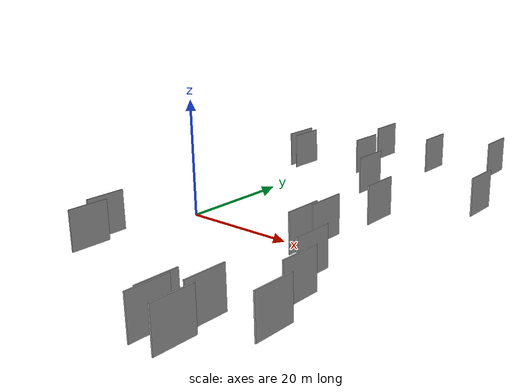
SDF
<sdf version="1.6">
 <world name="default">
  <scene>
   <sky><clouds><speed>12</speed></clouds></sky>
   <ambient>0.4 0.4 0.4 1</ambient>
   <background>0.7 0.7 0.7 1</background>
   <shadows>1</shadows>
  </scene>
  <gravity>0 0 -9.8066</gravity>
  <magnetic_field>6e-06 2.3e-05 -4.2e-05</magnetic_field>
  <physics default="0" name="default_physics" type="ode">
   <ode>
    <solver>
     <type>quick</type>
     <iters>10</iters>
     <sor>1.0</sor>
     <use_dynamic_moi_rescaling>0</use_dynamic_moi_rescaling>
    </solver>
    <constraints>
     <cfm>0</cfm>
     <erp>0.2</erp>
     <contact_max_correcting_vel>100</contact_max_correcting_vel>
     <contact_surface_layer>0.001</contact_surface_layer>
    </constraints>
   </ode>
   <max_step_size>0.004</max_step_size>
   <real_time_factor>1</real_time_factor>
   <real_time_update_rate>250</real_time_update_rate>
  </physics>
  <light name="sun" type="directional">
   <pose>0 0 10 0 0 0</pose>
   <diffuse>0.8 0.8 0.8 1</diffuse>
   <specular>0.2 0.2 0.2 1</specular>
   <attenuation>
    <range>1000</range>
    <constant>0.9</constant>
    <linear>0.01</linear>
    <quadratic>0.001</quadratic>
   </attenuation>
   <direction>-0.5 0.1 -0.9</direction>
  </light>
  <model name="grey_wall_1">
   <static>1</static>
   <pose>33.4672 6.1095 5.0 0.000000 0.000000 1.570796</pose>
   <link name="link">
    <pose>0 0 3.00 0 0 0</pose>
    <collision name="collision"><geometry><box><size>6.00 0.2 6.00</size></box></geometry></collision>
    <visual name="visual">
     <cast_shadows>0</cast_shadows>
     <geometry><box><size>6.00 0.2 6.00</size></box></geometry>
     <material>
      <script>
       <uri>model://grey_wall/materials/scripts</uri>
       <uri>model://grey_wall/materials/textures</uri>
       <name>vrc/grey_wall</name>
      </script>
     </material>
    </visual>
   </link>
  </model>
  <model name="grey_wall_2">
   <static>1</static>
   <pose>8.4890 -26.8085 5.0 0.000000 0.000000 1.570796</pose>
   <link name="link">
    <pose>0 0 3.00 0 0 0</pose>
    <collision name="collision"><geometry><box><size>6.00 0.2 6.00</size></box></geometry></collision>
    <visual name="visual">
     <cast_shadows>0</cast_shadows>
     <geometry><box><size>6.00 0.2 6.00</size></box></geometry>
     <material>
      <script>
       <uri>model://grey_wall/materials/scripts</uri>
       <uri>model://grey_wall/materials/textures</uri>
       <name>vrc/grey_wall</name>
      </script>
     </material>
    </visual>
   </link>
  </model>
  <model name="grey_wall_3">
   <static>1</static>
   <pose>34.0434 -37.7757 5.0 0.000000 0.000000 1.570796</pose>
   <link name="link">
    <pose>0 0 3.00 0 0 0</pose>
    <collision name="collision"><geometry><box><size>6.00 0.2 6.00</size></box></geometry></collision>
    <visual name="visual">
     <cast_shadows>0</cast_shadows>
     <geometry><box><size>6.00 0.2 6.00</size></box></geometry>
     <material>
      <script>
       <uri>model://grey_wall/materials/scripts</uri>
       <uri>model://grey_wall/materials/textures</uri>
       <name>vrc/grey_wall</name>
      </script>
     </material>
    </visual>
   </link>
  </model>
  <model name="grey_wall_4">
   <static>1</static>
   <pose>14.4410 36.9254 5.0 0.000000 0.000000 1.570796</pose>
   <link name="link">
    <pose>0 0 3.00 0 0 0</pose>
    <collision name="collision"><geometry><box><size>6.00 0.2 6.00</size></box></geometry></collision>
    <visual name="visual">
     <cast_shadows>0</cast_shadows>
     <geometry><box><size>6.00 0.2 6.00</size></box></geometry>
     <material>
      <script>
       <uri>model://grey_wall/materials/scripts</uri>
       <uri>model://grey_wall/materials/textures</uri>
       <name>vrc/grey_wall</name>
      </script>
     </material>
    </visual>
   </link>
  </model>
  <model name="grey_wall_5">
   <static>1</static>
   <pose>4.0566 23.6600 5.0 0.000000 0.000000 1.570796</pose>
   <link name="link">
    <pose>0 0 3.00 0 0 0</pose>
    <collision name="collision"><geometry><box><size>6.00 0.2 6.00</size></box></geometry></collision>
    <visual name="visual">
     <cast_shadows>0</cast_shadows>
     <geometry><box><size>6.00 0.2 6.00</size></box></geometry>
     <material>
      <script>
       <uri>model://grey_wall/materials/scripts</uri>
       <uri>model://grey_wall/materials/textures</uri>
       <name>vrc/grey_wall</name>
      </script>
     </material>
    </visual>
   </link>
  </model>
  <model name="grey_wall_6">
   <static>1</static>
   <pose>36.7212 -32.2249 5.0 0.000000 0.000000 1.570796</pose>
   <link name="link">
    <pose>0 0 3.00 0 0 0</pose>
    <collision name="collision"><geometry><box><size>6.00 0.2 6.00</size></box></geometry></collision>
    <visual name="visual">
     <cast_shadows>0</cast_shadows>
     <geometry><box><size>6.00 0.2 6.00</size></box></geometry>
     <material>
      <script>
       <uri>model://grey_wall/materials/scripts</uri>
       <uri>model://grey_wall/materials/textures</uri>
       <name>vrc/grey_wall</name>
      </script>
     </material>
    </visual>
   </link>
  </model>
  <model name="grey_wall_7">
   <static>1</static>
   <pose>33.7180 -36.2812 5.0 0.000000 0.000000 1.570796</pose>
   <link name="link">
    <pose>0 0 3.00 0 0 0</pose>
    <collision name="collision"><geometry><box><size>6.00 0.2 6.00</size></box></geometry></collision>
    <visual name="visual">
     <cast_shadows>0</cast_shadows>
     <geometry><box><size>6.00 0.2 6.00</size></box></geometry>
     <material>
      <script>
       <uri>model://grey_wall/materials/scripts</uri>
       <uri>model://grey_wall/materials/textures</uri>
       <name>vrc/grey_wall</name>
      </script>
     </material>
    </visual>
   </link>
  </model>
  <model name="grey_wall_8">
   <static>1</static>
   <pose>5.6744 23.1368 5.0 0.000000 0.000000 1.570796</pose>
   <link name="link">
    <pose>0 0 3.00 0 0 0</pose>
    <collision name="collision"><geometry><box><size>6.00 0.2 6.00</size></box></geometry></collision>
    <visual name="visual">
     <cast_shadows>0</cast_shadows>
     <geometry><box><size>6.00 0.2 6.00</size></box></geometry>
     <material>
      <script>
       <uri>model://grey_wall/materials/scripts</uri>
       <uri>model://grey_wall/materials/textures</uri>
       <name>vrc/grey_wall</name>
      </script>
     </material>
    </visual>
   </link>
  </model>
  <model name="grey_wall_9">
   <static>1</static>
   <pose>36.3481 38.9907 5.0 0.000000 0.000000 1.570796</pose>
   <link name="link">
    <pose>0 0 3.00 0 0 0</pose>
    <collision name="collision"><geometry><box><size>6.00 0.2 6.00</size></box></geometry></collision>
    <visual name="visual">
     <cast_shadows>0</cast_shadows>
     <geometry><box><size>6.00 0.2 6.00</size></box></geometry>
     <material>
      <script>
       <uri>model://grey_wall/materials/scripts</uri>
       <uri>model://grey_wall/materials/textures</uri>
       <name>vrc/grey_wall</name>
      </script>
     </material>
    </visual>
   </link>
  </model>
  <model name="grey_wall_10">
   <static>1</static>
   <pose>43.6414 18.6308 5.0 0.000000 0.000000 1.570796</pose>
   <link name="link">
    <pose>0 0 3.00 0 0 0</pose>
    <collision name="collision"><geometry><box><size>6.00 0.2 6.00</size></box></geometry></collision>
    <visual name="visual">
     <cast_shadows>0</cast_shadows>
     <geometry><box><size>6.00 0.2 6.00</size></box></geometry>
     <material>
      <script>
       <uri>model://grey_wall/materials/scripts</uri>
       <uri>model://grey_wall/materials/textures</uri>
       <name>vrc/grey_wall</name>
      </script>
     </material>
    </visual>
   </link>
  </model>
  <model name="grey_wall_11">
   <static>1</static>
   <pose>44.1899 -29.6172 5.0 0.000000 0.000000 1.570796</pose>
   <link name="link">
    <pose>0 0 3.00 0 0 0</pose>
    <collision name="collision"><geometry><box><size>6.00 0.2 6.00</size></box></geometry></collision>
    <visual name="visual">
     <cast_shadows>0</cast_shadows>
     <geometry><box><size>6.00 0.2 6.00</size></box></geometry>
     <material>
      <script>
       <uri>model://grey_wall/materials/scripts</uri>
       <uri>model://grey_wall/materials/textures</uri>
       <name>vrc/grey_wall</name>
      </script>
     </material>
    </visual>
   </link>
  </model>
  <model name="grey_wall_12">
   <static>1</static>
   <pose>31.7360 -9.5927 5.0 0.000000 0.000000 1.570796</pose>
   <link name="link">
    <pose>0 0 3.00 0 0 0</pose>
    <collision name="collision"><geometry><box><size>6.00 0.2 6.00</size></box></geometry></collision>
    <visual name="visual">
     <cast_shadows>0</cast_shadows>
     <geometry><box><size>6.00 0.2 6.00</size></box></geometry>
     <material>
      <script>
       <uri>model://grey_wall/materials/scripts</uri>
       <uri>model://grey_wall/materials/textures</uri>
       <name>vrc/grey_wall</name>
      </script>
     </material>
    </visual>
   </link>
  </model>
  <model name="grey_wall_13">
   <static>1</static>
   <pose>26.1785 34.9838 5.0 0.000000 0.000000 1.570796</pose>
   <link name="link">
    <pose>0 0 3.00 0 0 0</pose>
    <collision name="collision"><geometry><box><size>6.00 0.2 6.00</size></box></geometry></collision>
    <visual name="visual">
     <cast_shadows>0</cast_shadows>
     <geometry><box><size>6.00 0.2 6.00</size></box></geometry>
     <material>
      <script>
       <uri>model://grey_wall/materials/scripts</uri>
       <uri>model://grey_wall/materials/textures</uri>
       <name>vrc/grey_wall</name>
      </script>
     </material>
    </visual>
   </link>
  </model>
  <model name="grey_wall_14">
   <static>1</static>
   <pose>41.4398 -22.0215 5.0 0.000000 0.000000 1.570796</pose>
   <link name="link">
    <pose>0 0 3.00 0 0 0</pose>
    <collision name="collision"><geometry><box><size>6.00 0.2 6.00</size></box></geometry></collision>
    <visual name="visual">
     <cast_shadows>0</cast_shadows>
     <geometry><box><size>6.00 0.2 6.00</size></box></geometry>
     <material>
      <script>
       <uri>model://grey_wall/materials/scripts</uri>
       <uri>model://grey_wall/materials/textures</uri>
       <name>vrc/grey_wall</name>
      </script>
     </material>
    </visual>
   </link>
  </model>
  <model name="grey_wall_15">
   <static>1</static>
   <pose>6.7682 -22.7640 5.0 0.000000 0.000000 1.570796</pose>
   <link name="link">
    <pose>0 0 3.00 0 0 0</pose>
    <collision name="collision"><geometry><box><size>6.00 0.2 6.00</size></box></geometry></collision>
    <visual name="visual">
     <cast_shadows>0</cast_shadows>
     <geometry><box><size>6.00 0.2 6.00</size></box></geometry>
     <material>
      <script>
       <uri>model://grey_wall/materials/scripts</uri>
       <uri>model://grey_wall/materials/textures</uri>
       <name>vrc/grey_wall</name>
      </script>
     </material>
    </visual>
   </link>
  </model>
  <model name="grey_wall_16">
   <static>1</static>
   <pose>32.2756 -5.3824 5.0 0.000000 0.000000 1.570796</pose>
   <link name="link">
    <pose>0 0 3.00 0 0 0</pose>
    <collision name="collision"><geometry><box><size>6.00 0.2 6.00</size></box></geometry></collision>
    <visual name="visual">
     <cast_shadows>0</cast_shadows>
     <geometry><box><size>6.00 0.2 6.00</size></box></geometry>
     <material>
      <script>
       <uri>model://grey_wall/materials/scripts</uri>
       <uri>model://grey_wall/materials/textures</uri>
       <name>vrc/grey_wall</name>
      </script>
     </material>
    </visual>
   </link>
  </model>
  <model name="grey_wall_17">
   <static>1</static>
   <pose>23.8671 17.6292 5.0 0.000000 0.000000 1.570796</pose>
   <link name="link">
    <pose>0 0 3.00 0 0 0</pose>
    <collision name="collision"><geometry><box><size>6.00 0.2 6.00</size></box></geometry></collision>
    <visual name="visual">
     <cast_shadows>0</cast_shadows>
     <geometry><box><size>6.00 0.2 6.00</size></box></geometry>
     <material>
      <script>
       <uri>model://grey_wall/materials/scripts</uri>
       <uri>model://grey_wall/materials/textures</uri>
       <name>vrc/grey_wall</name>
      </script>
     </material>
    </visual>
   </link>
  </model>
  <model name="grey_wall_18">
   <static>1</static>
   <pose>16.6454 26.9164 5.0 0.000000 0.000000 1.570796</pose>
   <link name="link">
    <pose>0 0 3.00 0 0 0</pose>
    <collision name="collision"><geometry><box><size>6.00 0.2 6.00</size></box></geometry></collision>
    <visual name="visual">
     <cast_shadows>0</cast_shadows>
     <geometry><box><size>6.00 0.2 6.00</size></box></geometry>
     <material>
      <script>
       <uri>model://grey_wall/materials/scripts</uri>
       <uri>model://grey_wall/materials/textures</uri>
       <name>vrc/grey_wall</name>
      </script>
     </material>
    </visual>
   </link>
  </model>
  <model name="grey_wall_19">
   <static>1</static>
   <pose>38.2388 -15.7508 5.0 0.000000 0.000000 1.570796</pose>
   <link name="link">
    <pose>0 0 3.00 0 0 0</pose>
    <collision name="collision"><geometry><box><size>6.00 0.2 6.00</size></box></geometry></collision>
    <visual name="visual">
     <cast_shadows>0</cast_shadows>
     <geometry><box><size>6.00 0.2 6.00</size></box></geometry>
     <material>
      <script>
       <uri>model://grey_wall/materials/scripts</uri>
       <uri>model://grey_wall/materials/textures</uri>
       <name>vrc/grey_wall</name>
      </script>
     </material>
    </visual>
   </link>
  </model>
  <model name="grey_wall_20">
   <static>1</static>
   <pose>38.0040 -37.9056 5.0 0.000000 0.000000 1.570796</pose>
   <link name="link">
    <pose>0 0 3.00 0 0 0</pose>
    <collision name="collision"><geometry><box><size>6.00 0.2 6.00</size></box></geometry></collision>
    <visual name="visual">
     <cast_shadows>0</cast_shadows>
     <geometry><box><size>6.00 0.2 6.00</size></box></geometry>
     <material>
      <script>
       <uri>model://grey_wall/materials/scripts</uri>
       <uri>model://grey_wall/materials/textures</uri>
       <name>vrc/grey_wall</name>
      </script>
     </material>
    </visual>
   </link>
  </model>
 </world>
</sdf>
